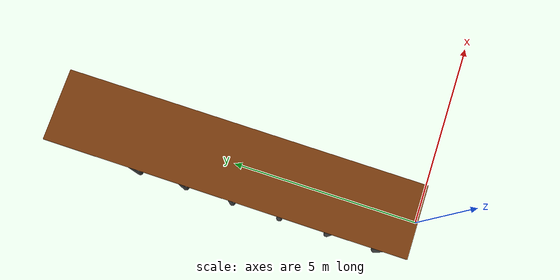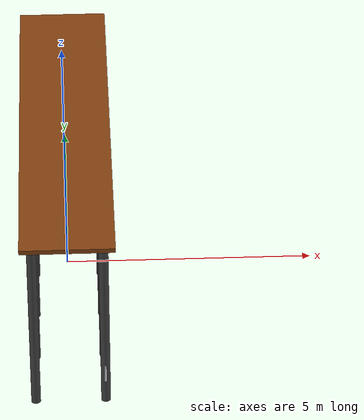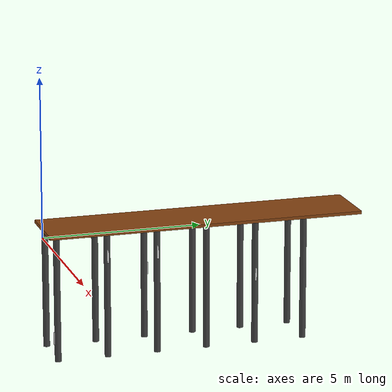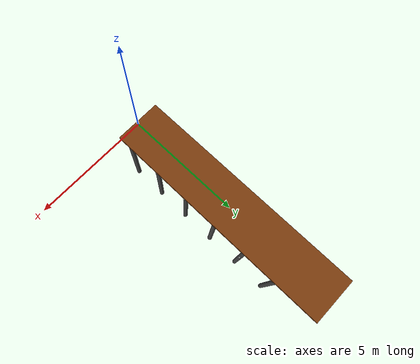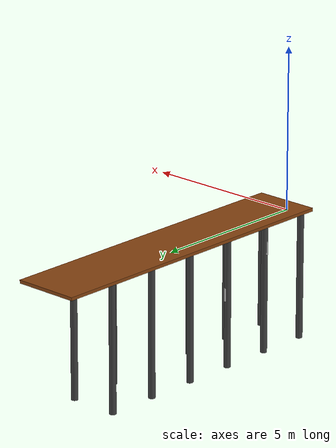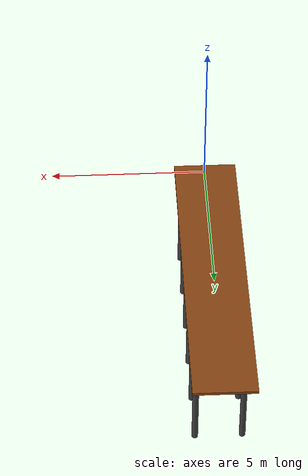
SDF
<?xml version="1.0" ?>
<sdf version="1.6">
  <model name="custom_model">
    <static>true</static>

    <link name="dock_platform">
      <pose>0 5 0.25 0 0 0</pose>
      <collision name="dock_platform_collision">
        <geometry>
          <box><size>2 10 0.1</size></box>
        </geometry>
      </collision>
      <visual name="dock_platform_visual">
        <geometry>
          <box><size>2 10 0.1</size></box>
        </geometry>

        <material>
            <ambient>0.54 0.27 0.07 1 </ambient>
            <diffuse>0.54 0.27 0.07 1 </diffuse>
            <specular>1 1 1 1</specular>
        </material>

      </visual>
    </link>

    <link name="cylinder0">
      <pose>0.75 0.25 -1.75 0 0 0 </pose>
      <collision name="cylinder0_collision">
        <geometry>
          <cylinder><radius>0.1</radius><length>4</length></cylinder>
        </geometry>
      </collision>
      <visual name="cylinder0_visual">
        <geometry>
          <cylinder><radius>0.1</radius><length>4</length></cylinder>
        </geometry>

        <material>
            <ambient>0.25 0.25 0.25 1 </ambient>
            <diffuse>0.25 0.25 0.25 1 </diffuse>
            <specular>1 1 1 1</specular>
        </material>

      </visual>
    </link>

    <link name="anode_0">
      <pose>0.75 0.15 -3.0 0 0 0 </pose>
      <collision name="anode_0_collision">
        <geometry>
          <box><size>0.05 0.05 0.4</size></box>
        </geometry>
      </collision>
      <visual name="anode_0_visual">
        <geometry>
          <box><size>0.05 0.05 0.4</size></box>
        </geometry>

        <material>
            <ambient>0.85 0.85 0.85 1 </ambient>
            <diffuse>0.85 0.85 0.85 1 </diffuse>
            <specular>1 1 1 1</specular>
        </material>

      </visual>
    </link>

    <link name="cylinder1">
      <pose>-0.75 0.25 -1.75 0 0 0 </pose>
      <collision name="cylinder1_collision">
        <geometry>
          <cylinder><radius>0.1</radius><length>4</length></cylinder>
        </geometry>
      </collision>
      <visual name="cylinder1_visual">
        <geometry>
          <cylinder><radius>0.1</radius><length>4</length></cylinder>
        </geometry>

        <material>
            <ambient>0.25 0.25 0.25 1 </ambient>
            <diffuse>0.25 0.25 0.25 1 </diffuse>
            <specular>1 1 1 1</specular>
        </material>

      </visual>
    </link>

    <link name="cylinder2">
      <pose>0.75 1.8333333333333333 -1.75 0 0 0 </pose>
      <collision name="cylinder2_collision">
        <geometry>
          <cylinder><radius>0.1</radius><length>4</length></cylinder>
        </geometry>
      </collision>
      <visual name="cylinder2_visual">
        <geometry>
          <cylinder><radius>0.1</radius><length>4</length></cylinder>
        </geometry>

        <material>
            <ambient>0.25 0.25 0.25 1 </ambient>
            <diffuse>0.25 0.25 0.25 1 </diffuse>
            <specular>1 1 1 1</specular>
        </material>

      </visual>
    </link>

    <link name="anode_2">
      <pose>0.85 1.8333333333333333 -0.5 0 0 0 </pose>
      <collision name="anode_2_collision">
        <geometry>
          <box><size>0.05 0.05 0.4</size></box>
        </geometry>
      </collision>
      <visual name="anode_2_visual">
        <geometry>
          <box><size>0.05 0.05 0.4</size></box>
        </geometry>

        <material>
            <ambient>0.85 0.85 0.85 1 </ambient>
            <diffuse>0.85 0.85 0.85 1 </diffuse>
            <specular>1 1 1 1</specular>
        </material>

      </visual>
    </link>

    <link name="cylinder3">
      <pose>-0.75 1.8333333333333333 -1.75 0 0 0 </pose>
      <collision name="cylinder3_collision">
        <geometry>
          <cylinder><radius>0.1</radius><length>4</length></cylinder>
        </geometry>
      </collision>
      <visual name="cylinder3_visual">
        <geometry>
          <cylinder><radius>0.1</radius><length>4</length></cylinder>
        </geometry>

        <material>
            <ambient>0.25 0.25 0.25 1 </ambient>
            <diffuse>0.25 0.25 0.25 1 </diffuse>
            <specular>1 1 1 1</specular>
        </material>

      </visual>
    </link>

    <link name="anode_3">
      <pose>-0.85 1.8333333333333333 -0.5 0 0 0 </pose>
      <collision name="anode_3_collision">
        <geometry>
          <box><size>0.05 0.05 0.4</size></box>
        </geometry>
      </collision>
      <visual name="anode_3_visual">
        <geometry>
          <box><size>0.05 0.05 0.4</size></box>
        </geometry>

        <material>
            <ambient>0.85 0.85 0.85 1 </ambient>
            <diffuse>0.85 0.85 0.85 1 </diffuse>
            <specular>1 1 1 1</specular>
        </material>

      </visual>
    </link>

    <link name="cylinder4">
      <pose>0.75 3.4166666666666665 -1.75 0 0 0 </pose>
      <collision name="cylinder4_collision">
        <geometry>
          <cylinder><radius>0.1</radius><length>4</length></cylinder>
        </geometry>
      </collision>
      <visual name="cylinder4_visual">
        <geometry>
          <cylinder><radius>0.1</radius><length>4</length></cylinder>
        </geometry>

        <material>
            <ambient>0.25 0.25 0.25 1 </ambient>
            <diffuse>0.25 0.25 0.25 1 </diffuse>
            <specular>1 1 1 1</specular>
        </material>

      </visual>
    </link>

    <link name="anode_4">
      <pose>0.85 3.4166666666666665 -0.5 0 0 0 </pose>
      <collision name="anode_4_collision">
        <geometry>
          <box><size>0.05 0.05 0.4</size></box>
        </geometry>
      </collision>
      <visual name="anode_4_visual">
        <geometry>
          <box><size>0.05 0.05 0.4</size></box>
        </geometry>

        <material>
            <ambient>0.85 0.85 0.85 1 </ambient>
            <diffuse>0.85 0.85 0.85 1 </diffuse>
            <specular>1 1 1 1</specular>
        </material>

      </visual>
    </link>

    <link name="cylinder5">
      <pose>-0.75 3.4166666666666665 -1.75 0 0 0 </pose>
      <collision name="cylinder5_collision">
        <geometry>
          <cylinder><radius>0.1</radius><length>4</length></cylinder>
        </geometry>
      </collision>
      <visual name="cylinder5_visual">
        <geometry>
          <cylinder><radius>0.1</radius><length>4</length></cylinder>
        </geometry>

        <material>
            <ambient>0.25 0.25 0.25 1 </ambient>
            <diffuse>0.25 0.25 0.25 1 </diffuse>
            <specular>1 1 1 1</specular>
        </material>

      </visual>
    </link>

    <link name="anode_5">
      <pose>-0.75 3.5166666666666666 -1.5 0 0 0 </pose>
      <collision name="anode_5_collision">
        <geometry>
          <box><size>0.05 0.05 0.4</size></box>
        </geometry>
      </collision>
      <visual name="anode_5_visual">
        <geometry>
          <box><size>0.05 0.05 0.4</size></box>
        </geometry>

        <material>
            <ambient>0.85 0.85 0.85 1 </ambient>
            <diffuse>0.85 0.85 0.85 1 </diffuse>
            <specular>1 1 1 1</specular>
        </material>

      </visual>
    </link>

    <link name="cylinder6">
      <pose>0.75 5.0 -1.75 0 0 0 </pose>
      <collision name="cylinder6_collision">
        <geometry>
          <cylinder><radius>0.1</radius><length>4</length></cylinder>
        </geometry>
      </collision>
      <visual name="cylinder6_visual">
        <geometry>
          <cylinder><radius>0.1</radius><length>4</length></cylinder>
        </geometry>

        <material>
            <ambient>0.25 0.25 0.25 1 </ambient>
            <diffuse>0.25 0.25 0.25 1 </diffuse>
            <specular>1 1 1 1</specular>
        </material>

      </visual>
    </link>

    <link name="cylinder7">
      <pose>-0.75 5.0 -1.75 0 0 0 </pose>
      <collision name="cylinder7_collision">
        <geometry>
          <cylinder><radius>0.1</radius><length>4</length></cylinder>
        </geometry>
      </collision>
      <visual name="cylinder7_visual">
        <geometry>
          <cylinder><radius>0.1</radius><length>4</length></cylinder>
        </geometry>

        <material>
            <ambient>0.25 0.25 0.25 1 </ambient>
            <diffuse>0.25 0.25 0.25 1 </diffuse>
            <specular>1 1 1 1</specular>
        </material>

      </visual>
    </link>

    <link name="cylinder8">
      <pose>0.75 6.583333333333333 -1.75 0 0 0 </pose>
      <collision name="cylinder8_collision">
        <geometry>
          <cylinder><radius>0.1</radius><length>4</length></cylinder>
        </geometry>
      </collision>
      <visual name="cylinder8_visual">
        <geometry>
          <cylinder><radius>0.1</radius><length>4</length></cylinder>
        </geometry>

        <material>
            <ambient>0.25 0.25 0.25 1 </ambient>
            <diffuse>0.25 0.25 0.25 1 </diffuse>
            <specular>1 1 1 1</specular>
        </material>

      </visual>
    </link>

    <link name="anode_8">
      <pose>0.85 6.583333333333333 -1.5 0 0 0 </pose>
      <collision name="anode_8_collision">
        <geometry>
          <box><size>0.05 0.05 0.4</size></box>
        </geometry>
      </collision>
      <visual name="anode_8_visual">
        <geometry>
          <box><size>0.05 0.05 0.4</size></box>
        </geometry>

        <material>
            <ambient>0.85 0.85 0.85 1 </ambient>
            <diffuse>0.85 0.85 0.85 1 </diffuse>
            <specular>1 1 1 1</specular>
        </material>

      </visual>
    </link>

    <link name="cylinder9">
      <pose>-0.75 6.583333333333333 -1.75 0 0 0 </pose>
      <collision name="cylinder9_collision">
        <geometry>
          <cylinder><radius>0.1</radius><length>4</length></cylinder>
        </geometry>
      </collision>
      <visual name="cylinder9_visual">
        <geometry>
          <cylinder><radius>0.1</radius><length>4</length></cylinder>
        </geometry>

        <material>
            <ambient>0.25 0.25 0.25 1 </ambient>
            <diffuse>0.25 0.25 0.25 1 </diffuse>
            <specular>1 1 1 1</specular>
        </material>

      </visual>
    </link>

    <link name="cylinder10">
      <pose>0.75 8.166666666666666 -1.75 0 0 0 </pose>
      <collision name="cylinder10_collision">
        <geometry>
          <cylinder><radius>0.1</radius><length>4</length></cylinder>
        </geometry>
      </collision>
      <visual name="cylinder10_visual">
        <geometry>
          <cylinder><radius>0.1</radius><length>4</length></cylinder>
        </geometry>

        <material>
            <ambient>0.25 0.25 0.25 1 </ambient>
            <diffuse>0.25 0.25 0.25 1 </diffuse>
            <specular>1 1 1 1</specular>
        </material>

      </visual>
    </link>

    <link name="cylinder11">
      <pose>-0.75 8.166666666666666 -1.75 0 0 0 </pose>
      <collision name="cylinder11_collision">
        <geometry>
          <cylinder><radius>0.1</radius><length>4</length></cylinder>
        </geometry>
      </collision>
      <visual name="cylinder11_visual">
        <geometry>
          <cylinder><radius>0.1</radius><length>4</length></cylinder>
        </geometry>

        <material>
            <ambient>0.25 0.25 0.25 1 </ambient>
            <diffuse>0.25 0.25 0.25 1 </diffuse>
            <specular>1 1 1 1</specular>
        </material>

      </visual>
    </link>

    <!-- Add more links (boxes/cylinders) here -->
  </model>
</sdf>
